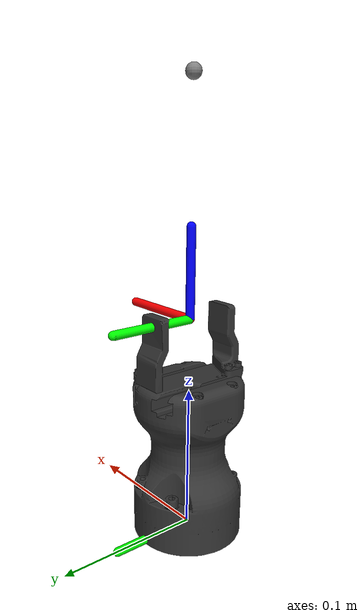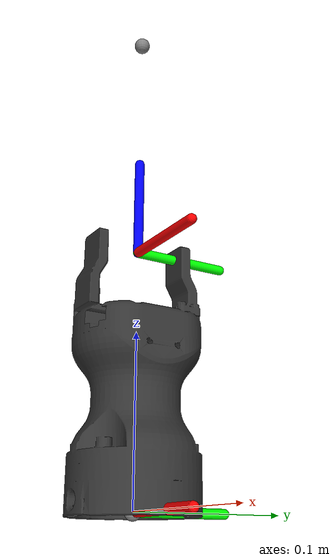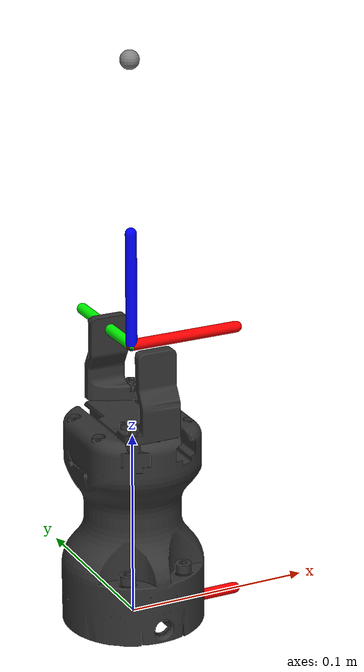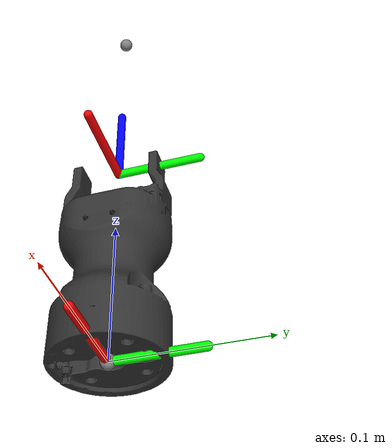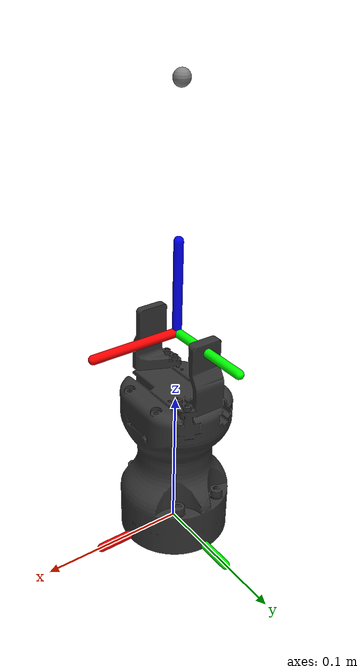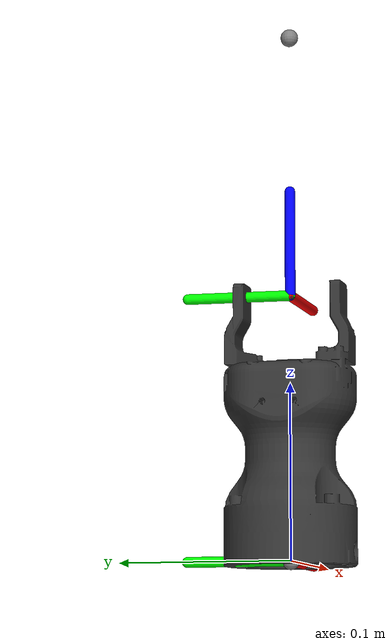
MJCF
<mujoco model="hande_gripper">
  <compiler angle="radian"/>
  <option timestep="0.01"/>

  <visual>
    <headlight diffuse="0.6 0.6 0.6" ambient="0.1 0.1 0.1" specular="0 0 0"/>
    <rgba haze="0.15 0.25 0.35 1"/>
    <global azimuth="120" elevation="-20"/>
  </visual>

  <asset>
    <mesh name="hande_mesh" file="cad_components/hande_gripper.stl"/>
  </asset>

  <default>
    <geom condim="3" friction="1 0.5 0.01" solref="0.02 1" solimp="0.9 0.95 0.001"/>
  </default>

  <worldbody>
    <body name="hande_base" pos="0 0 0">
      <inertial mass="2.6" pos="0 0 0.155" diaginertia="0.0143 0.0143 0.0016"/>

      <!-- Use STL mesh for visuals and collisions -->
      <geom type="mesh" mesh="hande_mesh"
            rgba="0.2 0.2 0.2 1"
            contype="1" conaffinity="1"
            group="0"/>

      <!-- Reference frame associated to the base of the tool -->
      <body name="gripper_base" pos="0 0 0.0" quat="1 0 0 0">
        <site name="gripper_base_site" pos="0 0.0 0" quat="1 0 0 0"/>
        <geom type="capsule" fromto="0 0 0 0.06 0 0" rgba="1 0 0 1" size="0.003" contype="0" conaffinity="0"/>
        <geom type="capsule" fromto="0 0 0 0 0.06 0" rgba="0 1 0 1" size="0.003" contype="0" conaffinity="0"/>
        <geom type="capsule" fromto="0 0 0 0 0 0.06" rgba="0 0 1 1" size="0.003" contype="0" conaffinity="0"/>
      </body>

      <!-- Reference frame associated to the tip of the tool -->
      <body name="gripper_tip" pos="0 0 0.15" quat="1 0 0 0">
        <site name="gripper_tip_site" pos="0 0.0 0.15" quat="1 0 0 0"/>
        <geom type="capsule" fromto="0 0 0 0.06 0 0" rgba="1 0 0 1" size="0.003" contype="0" conaffinity="0"/>
        <geom type="capsule" fromto="0 0 0 0 0.06 0" rgba="0 1 0 1" size="0.003" contype="0" conaffinity="0"/>
        <geom type="capsule" fromto="0 0 0 0 0 0.06" rgba="0 0 1 1" size="0.003" contype="0" conaffinity="0"/>
      </body>

    </body>
  </worldbody>
</mujoco>
